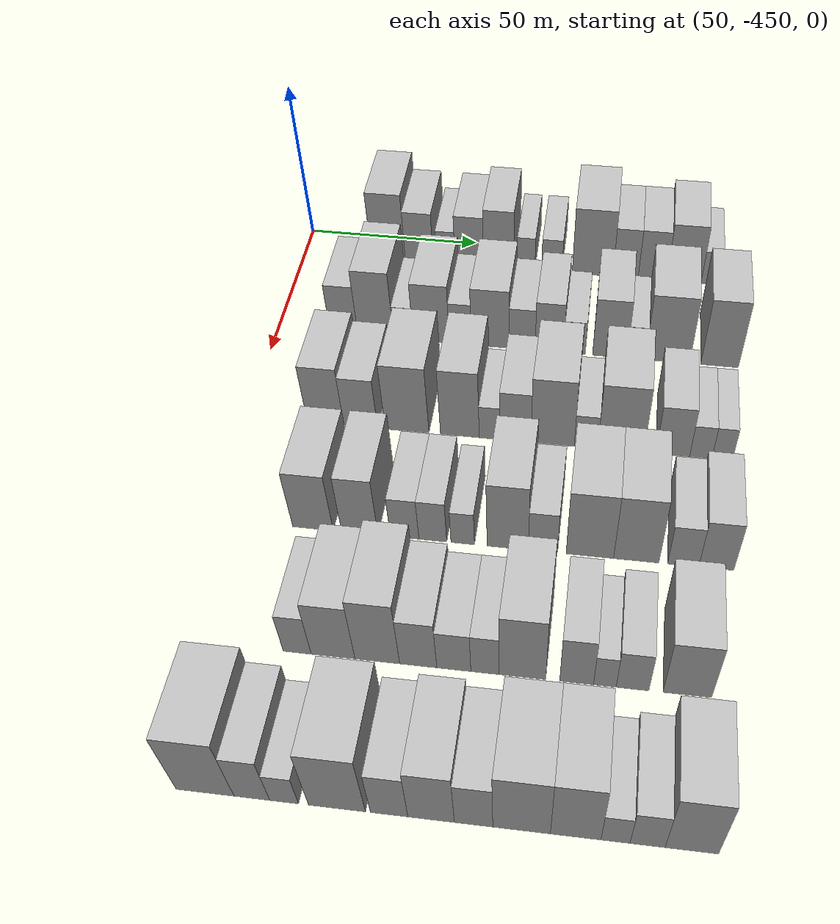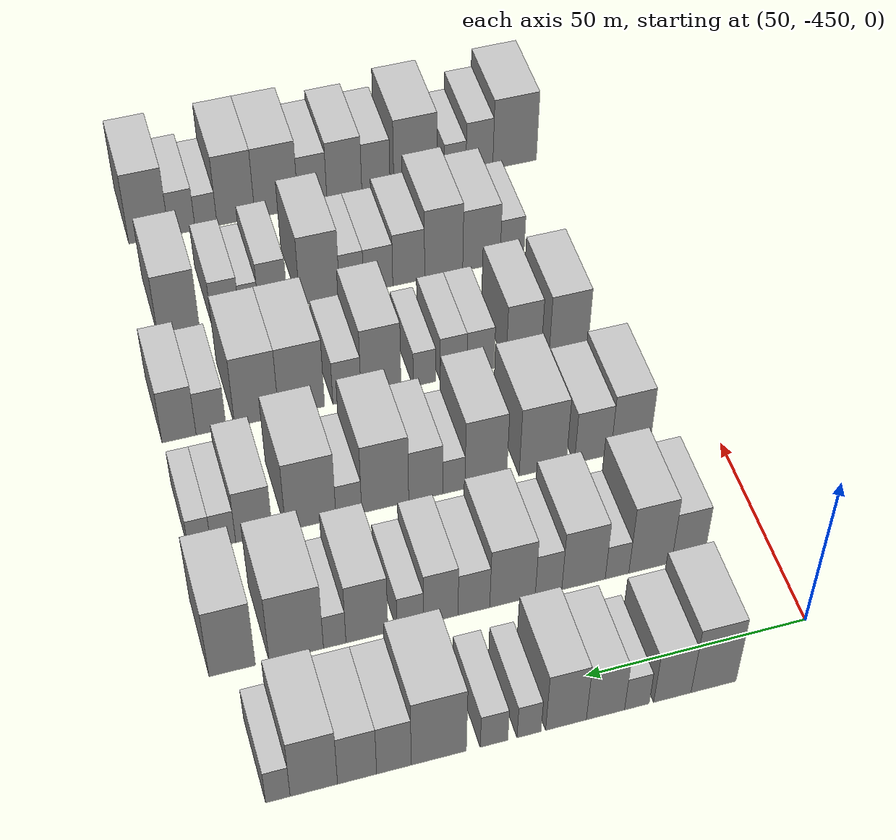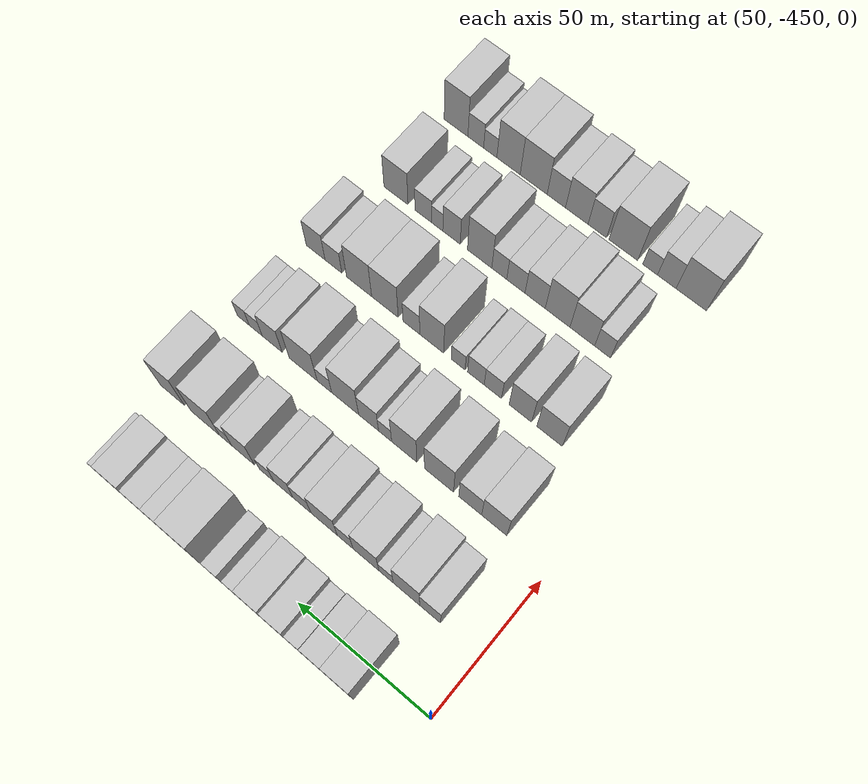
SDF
<sdf version="1.6">
 <world name="default">
  <model name="building_13">
   <static>1</static>
   <pose>50.0000 -424.8476 0 0.000000 0.000000 0.000000</pose>
   <link name="link">
    <pose>0 0 12.00 0 0 0</pose>
    <collision name="collision"><geometry><box><size>20.0000 10.1417 24.0000</size></box></geometry></collision>
    <visual name="visual">
     <cast_shadows>0</cast_shadows>
     <geometry><box><size>20.0000 10.1417 24.0000</size></box></geometry>
     <material>
      <script>
       <uri>model://HANNAS_wall/materials/scripts</uri>
       <uri>model://HANNAS_wall/materials/textures</uri>
       <name>vrc/HANNAS_wall</name>
      </script>
     </material>
    </visual>
   </link>
  </model>
  <model name="building_14">
   <static>1</static>
   <pose>50.0000 -415.6041 0 0.000000 0.000000 0.000000</pose>
   <link name="link">
    <pose>0 0 9.00 0 0 0</pose>
    <collision name="collision"><geometry><box><size>20.0000 8.3454 18.0000</size></box></geometry></collision>
    <visual name="visual">
     <cast_shadows>0</cast_shadows>
     <geometry><box><size>20.0000 8.3454 18.0000</size></box></geometry>
     <material>
      <script>
       <uri>model://HANNAS_wall/materials/scripts</uri>
       <uri>model://HANNAS_wall/materials/textures</uri>
       <name>vrc/HANNAS_wall</name>
      </script>
     </material>
    </visual>
   </link>
  </model>
  <model name="building_15">
   <static>1</static>
   <pose>50.0000 -407.6908 0 0.000000 0.000000 0.000000</pose>
   <link name="link">
    <pose>0 0 6.00 0 0 0</pose>
    <collision name="collision"><geometry><box><size>20.0000 5.4811 12.0000</size></box></geometry></collision>
    <visual name="visual">
     <cast_shadows>0</cast_shadows>
     <geometry><box><size>20.0000 5.4811 12.0000</size></box></geometry>
     <material>
      <script>
       <uri>model://HANNAS_wall/materials/scripts</uri>
       <uri>model://HANNAS_wall/materials/textures</uri>
       <name>vrc/HANNAS_wall</name>
      </script>
     </material>
    </visual>
   </link>
  </model>
  <model name="building_16">
   <static>1</static>
   <pose>50.0000 -400.7365 0 0.000000 0.000000 0.000000</pose>
   <link name="link">
    <pose>0 0 9.00 0 0 0</pose>
    <collision name="collision"><geometry><box><size>20.0000 8.4275 18.0000</size></box></geometry></collision>
    <visual name="visual">
     <cast_shadows>0</cast_shadows>
     <geometry><box><size>20.0000 8.4275 18.0000</size></box></geometry>
     <material>
      <script>
       <uri>model://HANNAS_wall/materials/scripts</uri>
       <uri>model://HANNAS_wall/materials/textures</uri>
       <name>vrc/HANNAS_wall</name>
      </script>
     </material>
    </visual>
   </link>
  </model>
  <model name="building_17">
   <static>1</static>
   <pose>50.0000 -392.0549 0 0.000000 0.000000 0.000000</pose>
   <link name="link">
    <pose>0 0 10.50 0 0 0</pose>
    <collision name="collision"><geometry><box><size>20.0000 8.9357 21.0000</size></box></geometry></collision>
    <visual name="visual">
     <cast_shadows>0</cast_shadows>
     <geometry><box><size>20.0000 8.9357 21.0000</size></box></geometry>
     <material>
      <script>
       <uri>model://HANNAS_wall/materials/scripts</uri>
       <uri>model://HANNAS_wall/materials/textures</uri>
       <name>vrc/HANNAS_wall</name>
      </script>
     </material>
    </visual>
   </link>
  </model>
  <model name="building_18">
   <static>1</static>
   <pose>50.0000 -383.9698 0 0.000000 0.000000 0.000000</pose>
   <link name="link">
    <pose>0 0 6.00 0 0 0</pose>
    <collision name="collision"><geometry><box><size>20.0000 5.2344 12.0000</size></box></geometry></collision>
    <visual name="visual">
     <cast_shadows>0</cast_shadows>
     <geometry><box><size>20.0000 5.2344 12.0000</size></box></geometry>
     <material>
      <script>
       <uri>model://HANNAS_wall/materials/scripts</uri>
       <uri>model://HANNAS_wall/materials/textures</uri>
       <name>vrc/HANNAS_wall</name>
      </script>
     </material>
    </visual>
   </link>
  </model>
  <model name="building_19">
   <static>1</static>
   <pose>50.0000 -376.3699 0 0.000000 0.000000 0.000000</pose>
   <link name="link">
    <pose>0 0 6.00 0 0 0</pose>
    <collision name="collision"><geometry><box><size>20.0000 5.9654 12.0000</size></box></geometry></collision>
    <visual name="visual">
     <cast_shadows>0</cast_shadows>
     <geometry><box><size>20.0000 5.9654 12.0000</size></box></geometry>
     <material>
      <script>
       <uri>model://HANNAS_wall/materials/scripts</uri>
       <uri>model://HANNAS_wall/materials/textures</uri>
       <name>vrc/HANNAS_wall</name>
      </script>
     </material>
    </visual>
   </link>
  </model>
  <model name="building_20">
   <static>1</static>
   <pose>50.0000 -364.4836 0 0.000000 0.000000 0.000000</pose>
   <link name="link">
    <pose>0 0 12.00 0 0 0</pose>
    <collision name="collision"><geometry><box><size>20.0000 11.8072 24.0000</size></box></geometry></collision>
    <visual name="visual">
     <cast_shadows>0</cast_shadows>
     <geometry><box><size>20.0000 11.8072 24.0000</size></box></geometry>
     <material>
      <script>
       <uri>model://HANNAS_wall/materials/scripts</uri>
       <uri>model://HANNAS_wall/materials/textures</uri>
       <name>vrc/HANNAS_wall</name>
      </script>
     </material>
    </visual>
   </link>
  </model>
  <model name="building_21">
   <static>1</static>
   <pose>50.0000 -354.9082 0 0.000000 0.000000 0.000000</pose>
   <link name="link">
    <pose>0 0 9.00 0 0 0</pose>
    <collision name="collision"><geometry><box><size>20.0000 7.3438 18.0000</size></box></geometry></collision>
    <visual name="visual">
     <cast_shadows>0</cast_shadows>
     <geometry><box><size>20.0000 7.3438 18.0000</size></box></geometry>
     <material>
      <script>
       <uri>model://HANNAS_wall/materials/scripts</uri>
       <uri>model://HANNAS_wall/materials/textures</uri>
       <name>vrc/HANNAS_wall</name>
      </script>
     </material>
    </visual>
   </link>
  </model>
  <model name="building_22">
   <static>1</static>
   <pose>50.0000 -347.1120 0 0.000000 0.000000 0.000000</pose>
   <link name="link">
    <pose>0 0 9.00 0 0 0</pose>
    <collision name="collision"><geometry><box><size>20.0000 8.2485 18.0000</size></box></geometry></collision>
    <visual name="visual">
     <cast_shadows>0</cast_shadows>
     <geometry><box><size>20.0000 8.2485 18.0000</size></box></geometry>
     <material>
      <script>
       <uri>model://HANNAS_wall/materials/scripts</uri>
       <uri>model://HANNAS_wall/materials/textures</uri>
       <name>vrc/HANNAS_wall</name>
      </script>
     </material>
    </visual>
   </link>
  </model>
  <model name="building_23">
   <static>1</static>
   <pose>50.0000 -338.0205 0 0.000000 0.000000 0.000000</pose>
   <link name="link">
    <pose>0 0 10.50 0 0 0</pose>
    <collision name="collision"><geometry><box><size>20.0000 9.9346 21.0000</size></box></geometry></collision>
    <visual name="visual">
     <cast_shadows>0</cast_shadows>
     <geometry><box><size>20.0000 9.9346 21.0000</size></box></geometry>
     <material>
      <script>
       <uri>model://HANNAS_wall/materials/scripts</uri>
       <uri>model://HANNAS_wall/materials/textures</uri>
       <name>vrc/HANNAS_wall</name>
      </script>
     </material>
    </visual>
   </link>
  </model>
  <model name="building_24">
   <static>1</static>
   <pose>50.0000 -330.4916 0 0.000000 0.000000 0.000000</pose>
   <link name="link">
    <pose>0 0 6.00 0 0 0</pose>
    <collision name="collision"><geometry><box><size>20.0000 5.1233 12.0000</size></box></geometry></collision>
    <visual name="visual">
     <cast_shadows>0</cast_shadows>
     <geometry><box><size>20.0000 5.1233 12.0000</size></box></geometry>
     <material>
      <script>
       <uri>model://HANNAS_wall/materials/scripts</uri>
       <uri>model://HANNAS_wall/materials/textures</uri>
       <name>vrc/HANNAS_wall</name>
      </script>
     </material>
    </visual>
   </link>
  </model>
  <model name="building_122">
   <static>1</static>
   <pose>82.0000 -431.2637 0 0.000000 0.000000 0.000000</pose>
   <link name="link">
    <pose>0 0 9.00 0 0 0</pose>
    <collision name="collision"><geometry><box><size>20.0000 7.8121 18.0000</size></box></geometry></collision>
    <visual name="visual">
     <cast_shadows>0</cast_shadows>
     <geometry><box><size>20.0000 7.8121 18.0000</size></box></geometry>
     <material>
      <script>
       <uri>model://HANNAS_wall/materials/scripts</uri>
       <uri>model://HANNAS_wall/materials/textures</uri>
       <name>vrc/HANNAS_wall</name>
      </script>
     </material>
    </visual>
   </link>
  </model>
  <model name="building_123">
   <static>1</static>
   <pose>82.0000 -422.3498 0 0.000000 0.000000 0.000000</pose>
   <link name="link">
    <pose>0 0 12.00 0 0 0</pose>
    <collision name="collision"><geometry><box><size>20.0000 10.0157 24.0000</size></box></geometry></collision>
    <visual name="visual">
     <cast_shadows>0</cast_shadows>
     <geometry><box><size>20.0000 10.0157 24.0000</size></box></geometry>
     <material>
      <script>
       <uri>model://HANNAS_wall/materials/scripts</uri>
       <uri>model://HANNAS_wall/materials/textures</uri>
       <name>vrc/HANNAS_wall</name>
      </script>
     </material>
    </visual>
   </link>
  </model>
  <model name="building_124">
   <static>1</static>
   <pose>82.0000 -414.5962 0 0.000000 0.000000 0.000000</pose>
   <link name="link">
    <pose>0 0 6.00 0 0 0</pose>
    <collision name="collision"><geometry><box><size>20.0000 5.4915 12.0000</size></box></geometry></collision>
    <visual name="visual">
     <cast_shadows>0</cast_shadows>
     <geometry><box><size>20.0000 5.4915 12.0000</size></box></geometry>
     <material>
      <script>
       <uri>model://HANNAS_wall/materials/scripts</uri>
       <uri>model://HANNAS_wall/materials/textures</uri>
       <name>vrc/HANNAS_wall</name>
      </script>
     </material>
    </visual>
   </link>
  </model>
  <model name="building_125">
   <static>1</static>
   <pose>82.0000 -406.8385 0 0.000000 0.000000 0.000000</pose>
   <link name="link">
    <pose>0 0 10.50 0 0 0</pose>
    <collision name="collision"><geometry><box><size>20.0000 10.0240 21.0000</size></box></geometry></collision>
    <visual name="visual">
     <cast_shadows>0</cast_shadows>
     <geometry><box><size>20.0000 10.0240 21.0000</size></box></geometry>
     <material>
      <script>
       <uri>model://HANNAS_wall/materials/scripts</uri>
       <uri>model://HANNAS_wall/materials/textures</uri>
       <name>vrc/HANNAS_wall</name>
      </script>
     </material>
    </visual>
   </link>
  </model>
  <model name="building_126">
   <static>1</static>
   <pose>82.0000 -398.7734 0 0.000000 0.000000 0.000000</pose>
   <link name="link">
    <pose>0 0 7.50 0 0 0</pose>
    <collision name="collision"><geometry><box><size>20.0000 6.1062 15.0000</size></box></geometry></collision>
    <visual name="visual">
     <cast_shadows>0</cast_shadows>
     <geometry><box><size>20.0000 6.1062 15.0000</size></box></geometry>
     <material>
      <script>
       <uri>model://HANNAS_wall/materials/scripts</uri>
       <uri>model://HANNAS_wall/materials/textures</uri>
       <name>vrc/HANNAS_wall</name>
      </script>
     </material>
    </visual>
   </link>
  </model>
  <model name="building_127">
   <static>1</static>
   <pose>82.0000 -390.5238 0 0.000000 0.000000 0.000000</pose>
   <link name="link">
    <pose>0 0 10.50 0 0 0</pose>
    <collision name="collision"><geometry><box><size>20.0000 10.3931 21.0000</size></box></geometry></collision>
    <visual name="visual">
     <cast_shadows>0</cast_shadows>
     <geometry><box><size>20.0000 10.3931 21.0000</size></box></geometry>
     <material>
      <script>
       <uri>model://HANNAS_wall/materials/scripts</uri>
       <uri>model://HANNAS_wall/materials/textures</uri>
       <name>vrc/HANNAS_wall</name>
      </script>
     </material>
    </visual>
   </link>
  </model>
  <model name="building_128">
   <static>1</static>
   <pose>82.0000 -381.7339 0 0.000000 0.000000 0.000000</pose>
   <link name="link">
    <pose>0 0 7.50 0 0 0</pose>
    <collision name="collision"><geometry><box><size>20.0000 7.1867 15.0000</size></box></geometry></collision>
    <visual name="visual">
     <cast_shadows>0</cast_shadows>
     <geometry><box><size>20.0000 7.1867 15.0000</size></box></geometry>
     <material>
      <script>
       <uri>model://HANNAS_wall/materials/scripts</uri>
       <uri>model://HANNAS_wall/materials/textures</uri>
       <name>vrc/HANNAS_wall</name>
      </script>
     </material>
    </visual>
   </link>
  </model>
  <model name="building_129">
   <static>1</static>
   <pose>82.0000 -374.2468 0 0.000000 0.000000 0.000000</pose>
   <link name="link">
    <pose>0 0 9.00 0 0 0</pose>
    <collision name="collision"><geometry><box><size>20.0000 7.7875 18.0000</size></box></geometry></collision>
    <visual name="visual">
     <cast_shadows>0</cast_shadows>
     <geometry><box><size>20.0000 7.7875 18.0000</size></box></geometry>
     <material>
      <script>
       <uri>model://HANNAS_wall/materials/scripts</uri>
       <uri>model://HANNAS_wall/materials/textures</uri>
       <name>vrc/HANNAS_wall</name>
      </script>
     </material>
    </visual>
   </link>
  </model>
  <model name="building_130">
   <static>1</static>
   <pose>82.0000 -367.3965 0 0.000000 0.000000 0.000000</pose>
   <link name="link">
    <pose>0 0 6.00 0 0 0</pose>
    <collision name="collision"><geometry><box><size>20.0000 5.9131 12.0000</size></box></geometry></collision>
    <visual name="visual">
     <cast_shadows>0</cast_shadows>
     <geometry><box><size>20.0000 5.9131 12.0000</size></box></geometry>
     <material>
      <script>
       <uri>model://HANNAS_wall/materials/scripts</uri>
       <uri>model://HANNAS_wall/materials/textures</uri>
       <name>vrc/HANNAS_wall</name>
      </script>
     </material>
    </visual>
   </link>
  </model>
  <model name="building_131">
   <static>1</static>
   <pose>82.0000 -357.7746 0 0.000000 0.000000 0.000000</pose>
   <link name="link">
    <pose>0 0 10.50 0 0 0</pose>
    <collision name="collision"><geometry><box><size>20.0000 9.3309 21.0000</size></box></geometry></collision>
    <visual name="visual">
     <cast_shadows>0</cast_shadows>
     <geometry><box><size>20.0000 9.3309 21.0000</size></box></geometry>
     <material>
      <script>
       <uri>model://HANNAS_wall/materials/scripts</uri>
       <uri>model://HANNAS_wall/materials/textures</uri>
       <name>vrc/HANNAS_wall</name>
      </script>
     </material>
    </visual>
   </link>
  </model>
  <model name="building_132">
   <static>1</static>
   <pose>82.0000 -350.6234 0 0.000000 0.000000 0.000000</pose>
   <link name="link">
    <pose>0 0 6.00 0 0 0</pose>
    <collision name="collision"><geometry><box><size>20.0000 4.9716 12.0000</size></box></geometry></collision>
    <visual name="visual">
     <cast_shadows>0</cast_shadows>
     <geometry><box><size>20.0000 4.9716 12.0000</size></box></geometry>
     <material>
      <script>
       <uri>model://HANNAS_wall/materials/scripts</uri>
       <uri>model://HANNAS_wall/materials/textures</uri>
       <name>vrc/HANNAS_wall</name>
      </script>
     </material>
    </visual>
   </link>
  </model>
  <model name="building_133">
   <static>1</static>
   <pose>82.0000 -342.1812 0 0.000000 0.000000 0.000000</pose>
   <link name="link">
    <pose>0 0 12.00 0 0 0</pose>
    <collision name="collision"><geometry><box><size>20.0000 11.9127 24.0000</size></box></geometry></collision>
    <visual name="visual">
     <cast_shadows>0</cast_shadows>
     <geometry><box><size>20.0000 11.9127 24.0000</size></box></geometry>
     <material>
      <script>
       <uri>model://HANNAS_wall/materials/scripts</uri>
       <uri>model://HANNAS_wall/materials/textures</uri>
       <name>vrc/HANNAS_wall</name>
      </script>
     </material>
    </visual>
   </link>
  </model>
  <model name="building_134">
   <static>1</static>
   <pose>82.0000 -328.1882 0 0.000000 0.000000 0.000000</pose>
   <link name="link">
    <pose>0 0 12.00 0 0 0</pose>
    <collision name="collision"><geometry><box><size>20.0000 10.0733 24.0000</size></box></geometry></collision>
    <visual name="visual">
     <cast_shadows>0</cast_shadows>
     <geometry><box><size>20.0000 10.0733 24.0000</size></box></geometry>
     <material>
      <script>
       <uri>model://HANNAS_wall/materials/scripts</uri>
       <uri>model://HANNAS_wall/materials/textures</uri>
       <name>vrc/HANNAS_wall</name>
      </script>
     </material>
    </visual>
   </link>
  </model>
  <model name="building_240">
   <static>1</static>
   <pose>114.0000 -429.1707 0 0.000000 0.000000 0.000000</pose>
   <link name="link">
    <pose>0 0 10.50 0 0 0</pose>
    <collision name="collision"><geometry><box><size>20.0000 9.5785 21.0000</size></box></geometry></collision>
    <visual name="visual">
     <cast_shadows>0</cast_shadows>
     <geometry><box><size>20.0000 9.5785 21.0000</size></box></geometry>
     <material>
      <script>
       <uri>model://HANNAS_wall/materials/scripts</uri>
       <uri>model://HANNAS_wall/materials/textures</uri>
       <name>vrc/HANNAS_wall</name>
      </script>
     </material>
    </visual>
   </link>
  </model>
  <model name="building_241">
   <static>1</static>
   <pose>114.0000 -419.9825 0 0.000000 0.000000 0.000000</pose>
   <link name="link">
    <pose>0 0 9.00 0 0 0</pose>
    <collision name="collision"><geometry><box><size>20.0000 8.7980 18.0000</size></box></geometry></collision>
    <visual name="visual">
     <cast_shadows>0</cast_shadows>
     <geometry><box><size>20.0000 8.7980 18.0000</size></box></geometry>
     <material>
      <script>
       <uri>model://HANNAS_wall/materials/scripts</uri>
       <uri>model://HANNAS_wall/materials/textures</uri>
       <name>vrc/HANNAS_wall</name>
      </script>
     </material>
    </visual>
   </link>
  </model>
  <model name="building_242">
   <static>1</static>
   <pose>114.0000 -407.9237 0 0.000000 0.000000 0.000000</pose>
   <link name="link">
    <pose>0 0 12.00 0 0 0</pose>
    <collision name="collision"><geometry><box><size>20.0000 11.3197 24.0000</size></box></geometry></collision>
    <visual name="visual">
     <cast_shadows>0</cast_shadows>
     <geometry><box><size>20.0000 11.3197 24.0000</size></box></geometry>
     <material>
      <script>
       <uri>model://HANNAS_wall/materials/scripts</uri>
       <uri>model://HANNAS_wall/materials/textures</uri>
       <name>vrc/HANNAS_wall</name>
      </script>
     </material>
    </visual>
   </link>
  </model>
  <model name="building_243">
   <static>1</static>
   <pose>114.0000 -394.2910 0 0.000000 0.000000 0.000000</pose>
   <link name="link">
    <pose>0 0 12.00 0 0 0</pose>
    <collision name="collision"><geometry><box><size>20.0000 9.9457 24.0000</size></box></geometry></collision>
    <visual name="visual">
     <cast_shadows>0</cast_shadows>
     <geometry><box><size>20.0000 9.9457 24.0000</size></box></geometry>
     <material>
      <script>
       <uri>model://HANNAS_wall/materials/scripts</uri>
       <uri>model://HANNAS_wall/materials/textures</uri>
       <name>vrc/HANNAS_wall</name>
      </script>
     </material>
    </visual>
   </link>
  </model>
  <model name="building_244">
   <static>1</static>
   <pose>114.0000 -386.7099 0 0.000000 0.000000 0.000000</pose>
   <link name="link">
    <pose>0 0 6.00 0 0 0</pose>
    <collision name="collision"><geometry><box><size>20.0000 5.2166 12.0000</size></box></geometry></collision>
    <visual name="visual">
     <cast_shadows>0</cast_shadows>
     <geometry><box><size>20.0000 5.2166 12.0000</size></box></geometry>
     <material>
      <script>
       <uri>model://HANNAS_wall/materials/scripts</uri>
       <uri>model://HANNAS_wall/materials/textures</uri>
       <name>vrc/HANNAS_wall</name>
      </script>
     </material>
    </visual>
   </link>
  </model>
  <model name="building_245">
   <static>1</static>
   <pose>114.0000 -380.0978 0 0.000000 0.000000 0.000000</pose>
   <link name="link">
    <pose>0 0 9.00 0 0 0</pose>
    <collision name="collision"><geometry><box><size>20.0000 8.0076 18.0000</size></box></geometry></collision>
    <visual name="visual">
     <cast_shadows>0</cast_shadows>
     <geometry><box><size>20.0000 8.0076 18.0000</size></box></geometry>
     <material>
      <script>
       <uri>model://HANNAS_wall/materials/scripts</uri>
       <uri>model://HANNAS_wall/materials/textures</uri>
       <name>vrc/HANNAS_wall</name>
      </script>
     </material>
    </visual>
   </link>
  </model>
  <model name="building_246">
   <static>1</static>
   <pose>114.0000 -370.6038 0 0.000000 0.000000 0.000000</pose>
   <link name="link">
    <pose>0 0 12.00 0 0 0</pose>
    <collision name="collision"><geometry><box><size>20.0000 10.9803 24.0000</size></box></geometry></collision>
    <visual name="visual">
     <cast_shadows>0</cast_shadows>
     <geometry><box><size>20.0000 10.9803 24.0000</size></box></geometry>
     <material>
      <script>
       <uri>model://HANNAS_wall/materials/scripts</uri>
       <uri>model://HANNAS_wall/materials/textures</uri>
       <name>vrc/HANNAS_wall</name>
      </script>
     </material>
    </visual>
   </link>
  </model>
  <model name="building_247">
   <static>1</static>
   <pose>114.0000 -362.1344 0 0.000000 0.000000 0.000000</pose>
   <link name="link">
    <pose>0 0 6.00 0 0 0</pose>
    <collision name="collision"><geometry><box><size>20.0000 5.9584 12.0000</size></box></geometry></collision>
    <visual name="visual">
     <cast_shadows>0</cast_shadows>
     <geometry><box><size>20.0000 5.9584 12.0000</size></box></geometry>
     <material>
      <script>
       <uri>model://HANNAS_wall/materials/scripts</uri>
       <uri>model://HANNAS_wall/materials/textures</uri>
       <name>vrc/HANNAS_wall</name>
      </script>
     </material>
    </visual>
   </link>
  </model>
  <model name="building_248">
   <static>1</static>
   <pose>114.0000 -353.3468 0 0.000000 0.000000 0.000000</pose>
   <link name="link">
    <pose>0 0 12.00 0 0 0</pose>
    <collision name="collision"><geometry><box><size>20.0000 11.6170 24.0000</size></box></geometry></collision>
    <visual name="visual">
     <cast_shadows>0</cast_shadows>
     <geometry><box><size>20.0000 11.6170 24.0000</size></box></geometry>
     <material>
      <script>
       <uri>model://HANNAS_wall/materials/scripts</uri>
       <uri>model://HANNAS_wall/materials/textures</uri>
       <name>vrc/HANNAS_wall</name>
      </script>
     </material>
    </visual>
   </link>
  </model>
  <model name="building_249">
   <static>1</static>
   <pose>114.0000 -340.3384 0 0.000000 0.000000 0.000000</pose>
   <link name="link">
    <pose>0 0 9.00 0 0 0</pose>
    <collision name="collision"><geometry><box><size>20.0000 8.3997 18.0000</size></box></geometry></collision>
    <visual name="visual">
     <cast_shadows>0</cast_shadows>
     <geometry><box><size>20.0000 8.3997 18.0000</size></box></geometry>
     <material>
      <script>
       <uri>model://HANNAS_wall/materials/scripts</uri>
       <uri>model://HANNAS_wall/materials/textures</uri>
       <name>vrc/HANNAS_wall</name>
      </script>
     </material>
    </visual>
   </link>
  </model>
  <model name="building_250">
   <static>1</static>
   <pose>114.0000 -333.3641 0 0.000000 0.000000 0.000000</pose>
   <link name="link">
    <pose>0 0 6.00 0 0 0</pose>
    <collision name="collision"><geometry><box><size>20.0000 5.5490 12.0000</size></box></geometry></collision>
    <visual name="visual">
     <cast_shadows>0</cast_shadows>
     <geometry><box><size>20.0000 5.5490 12.0000</size></box></geometry>
     <material>
      <script>
       <uri>model://HANNAS_wall/materials/scripts</uri>
       <uri>model://HANNAS_wall/materials/textures</uri>
       <name>vrc/HANNAS_wall</name>
      </script>
     </material>
    </visual>
   </link>
  </model>
  <model name="building_251">
   <static>1</static>
   <pose>114.0000 -328.0484 0 0.000000 0.000000 0.000000</pose>
   <link name="link">
    <pose>0 0 6.00 0 0 0</pose>
    <collision name="collision"><geometry><box><size>20.0000 5.0824 12.0000</size></box></geometry></collision>
    <visual name="visual">
     <cast_shadows>0</cast_shadows>
     <geometry><box><size>20.0000 5.0824 12.0000</size></box></geometry>
     <material>
      <script>
       <uri>model://HANNAS_wall/materials/scripts</uri>
       <uri>model://HANNAS_wall/materials/textures</uri>
       <name>vrc/HANNAS_wall</name>
      </script>
     </material>
    </visual>
   </link>
  </model>
  <model name="building_362">
   <static>1</static>
   <pose>146.0000 -424.9022 0 0.000000 0.000000 0.000000</pose>
   <link name="link">
    <pose>0 0 10.50 0 0 0</pose>
    <collision name="collision"><geometry><box><size>20.0000 9.8249 21.0000</size></box></geometry></collision>
    <visual name="visual">
     <cast_shadows>0</cast_shadows>
     <geometry><box><size>20.0000 9.8249 21.0000</size></box></geometry>
     <material>
      <script>
       <uri>model://HANNAS_wall/materials/scripts</uri>
       <uri>model://HANNAS_wall/materials/textures</uri>
       <name>vrc/HANNAS_wall</name>
      </script>
     </material>
    </visual>
   </link>
  </model>
  <model name="building_363">
   <static>1</static>
   <pose>146.0000 -413.6037 0 0.000000 0.000000 0.000000</pose>
   <link name="link">
    <pose>0 0 10.50 0 0 0</pose>
    <collision name="collision"><geometry><box><size>20.0000 8.7722 21.0000</size></box></geometry></collision>
    <visual name="visual">
     <cast_shadows>0</cast_shadows>
     <geometry><box><size>20.0000 8.7722 21.0000</size></box></geometry>
     <material>
      <script>
       <uri>model://HANNAS_wall/materials/scripts</uri>
       <uri>model://HANNAS_wall/materials/textures</uri>
       <name>vrc/HANNAS_wall</name>
      </script>
     </material>
    </visual>
   </link>
  </model>
  <model name="building_364">
   <static>1</static>
   <pose>146.0000 -402.8159 0 0.000000 0.000000 0.000000</pose>
   <link name="link">
    <pose>0 0 7.50 0 0 0</pose>
    <collision name="collision"><geometry><box><size>20.0000 6.8034 15.0000</size></box></geometry></collision>
    <visual name="visual">
     <cast_shadows>0</cast_shadows>
     <geometry><box><size>20.0000 6.8034 15.0000</size></box></geometry>
     <material>
      <script>
       <uri>model://HANNAS_wall/materials/scripts</uri>
       <uri>model://HANNAS_wall/materials/textures</uri>
       <name>vrc/HANNAS_wall</name>
      </script>
     </material>
    </visual>
   </link>
  </model>
  <model name="building_365">
   <static>1</static>
   <pose>146.0000 -396.1015 0 0.000000 0.000000 0.000000</pose>
   <link name="link">
    <pose>0 0 7.50 0 0 0</pose>
    <collision name="collision"><geometry><box><size>20.0000 6.6254 15.0000</size></box></geometry></collision>
    <visual name="visual">
     <cast_shadows>0</cast_shadows>
     <geometry><box><size>20.0000 6.6254 15.0000</size></box></geometry>
     <material>
      <script>
       <uri>model://HANNAS_wall/materials/scripts</uri>
       <uri>model://HANNAS_wall/materials/textures</uri>
       <name>vrc/HANNAS_wall</name>
      </script>
     </material>
    </visual>
   </link>
  </model>
  <model name="building_366">
   <static>1</static>
   <pose>146.0000 -389.0002 0 0.000000 0.000000 0.000000</pose>
   <link name="link">
    <pose>0 0 6.00 0 0 0</pose>
    <collision name="collision"><geometry><box><size>20.0000 5.5773 12.0000</size></box></geometry></collision>
    <visual name="visual">
     <cast_shadows>0</cast_shadows>
     <geometry><box><size>20.0000 5.5773 12.0000</size></box></geometry>
     <material>
      <script>
       <uri>model://HANNAS_wall/materials/scripts</uri>
       <uri>model://HANNAS_wall/materials/textures</uri>
       <name>vrc/HANNAS_wall</name>
      </script>
     </material>
    </visual>
   </link>
  </model>
  <model name="building_367">
   <static>1</static>
   <pose>146.0000 -378.3548 0 0.000000 0.000000 0.000000</pose>
   <link name="link">
    <pose>0 0 12.00 0 0 0</pose>
    <collision name="collision"><geometry><box><size>20.0000 9.7135 24.0000</size></box></geometry></collision>
    <visual name="visual">
     <cast_shadows>0</cast_shadows>
     <geometry><box><size>20.0000 9.7135 24.0000</size></box></geometry>
     <material>
      <script>
       <uri>model://HANNAS_wall/materials/scripts</uri>
       <uri>model://HANNAS_wall/materials/textures</uri>
       <name>vrc/HANNAS_wall</name>
      </script>
     </material>
    </visual>
   </link>
  </model>
  <model name="building_368">
   <static>1</static>
   <pose>146.0000 -370.0652 0 0.000000 0.000000 0.000000</pose>
   <link name="link">
    <pose>0 0 7.50 0 0 0</pose>
    <collision name="collision"><geometry><box><size>20.0000 6.8656 15.0000</size></box></geometry></collision>
    <visual name="visual">
     <cast_shadows>0</cast_shadows>
     <geometry><box><size>20.0000 6.8656 15.0000</size></box></geometry>
     <material>
      <script>
       <uri>model://HANNAS_wall/materials/scripts</uri>
       <uri>model://HANNAS_wall/materials/textures</uri>
       <name>vrc/HANNAS_wall</name>
      </script>
     </material>
    </visual>
   </link>
  </model>
  <model name="building_369">
   <static>1</static>
   <pose>146.0000 -359.1123 0 0.000000 0.000000 0.000000</pose>
   <link name="link">
    <pose>0 0 12.00 0 0 0</pose>
    <collision name="collision"><geometry><box><size>20.0000 11.0402 24.0000</size></box></geometry></collision>
    <visual name="visual">
     <cast_shadows>0</cast_shadows>
     <geometry><box><size>20.0000 11.0402 24.0000</size></box></geometry>
     <material>
      <script>
       <uri>model://HANNAS_wall/materials/scripts</uri>
       <uri>model://HANNAS_wall/materials/textures</uri>
       <name>vrc/HANNAS_wall</name>
      </script>
     </material>
    </visual>
   </link>
  </model>
  <model name="building_370">
   <static>1</static>
   <pose>146.0000 -348.3278 0 0.000000 0.000000 0.000000</pose>
   <link name="link">
    <pose>0 0 12.00 0 0 0</pose>
    <collision name="collision"><geometry><box><size>20.0000 10.5288 24.0000</size></box></geometry></collision>
    <visual name="visual">
     <cast_shadows>0</cast_shadows>
     <geometry><box><size>20.0000 10.5288 24.0000</size></box></geometry>
     <material>
      <script>
       <uri>model://HANNAS_wall/materials/scripts</uri>
       <uri>model://HANNAS_wall/materials/textures</uri>
       <name>vrc/HANNAS_wall</name>
      </script>
     </material>
    </visual>
   </link>
  </model>
  <model name="building_371">
   <static>1</static>
   <pose>146.0000 -337.4940 0 0.000000 0.000000 0.000000</pose>
   <link name="link">
    <pose>0 0 7.50 0 0 0</pose>
    <collision name="collision"><geometry><box><size>20.0000 7.1388 15.0000</size></box></geometry></collision>
    <visual name="visual">
     <cast_shadows>0</cast_shadows>
     <geometry><box><size>20.0000 7.1388 15.0000</size></box></geometry>
     <material>
      <script>
       <uri>model://HANNAS_wall/materials/scripts</uri>
       <uri>model://HANNAS_wall/materials/textures</uri>
       <name>vrc/HANNAS_wall</name>
      </script>
     </material>
    </visual>
   </link>
  </model>
  <model name="building_372">
   <static>1</static>
   <pose>146.0000 -329.8999 0 0.000000 0.000000 0.000000</pose>
   <link name="link">
    <pose>0 0 9.00 0 0 0</pose>
    <collision name="collision"><geometry><box><size>20.0000 8.0495 18.0000</size></box></geometry></collision>
    <visual name="visual">
     <cast_shadows>0</cast_shadows>
     <geometry><box><size>20.0000 8.0495 18.0000</size></box></geometry>
     <material>
      <script>
       <uri>model://HANNAS_wall/materials/scripts</uri>
       <uri>model://HANNAS_wall/materials/textures</uri>
       <name>vrc/HANNAS_wall</name>
      </script>
     </material>
    </visual>
   </link>
  </model>
  <model name="building_479">
   <static>1</static>
   <pose>178.0000 -420.8276 0 0.000000 0.000000 0.000000</pose>
   <link name="link">
    <pose>0 0 7.50 0 0 0</pose>
    <collision name="collision"><geometry><box><size>20.0000 6.2062 15.0000</size></box></geometry></collision>
    <visual name="visual">
     <cast_shadows>0</cast_shadows>
     <geometry><box><size>20.0000 6.2062 15.0000</size></box></geometry>
     <material>
      <script>
       <uri>model://HANNAS_wall/materials/scripts</uri>
       <uri>model://HANNAS_wall/materials/textures</uri>
       <name>vrc/HANNAS_wall</name>
      </script>
     </material>
    </visual>
   </link>
  </model>
  <model name="building_480">
   <static>1</static>
   <pose>178.0000 -412.8758 0 0.000000 0.000000 0.000000</pose>
   <link name="link">
    <pose>0 0 10.50 0 0 0</pose>
    <collision name="collision"><geometry><box><size>20.0000 9.6974 21.0000</size></box></geometry></collision>
    <visual name="visual">
     <cast_shadows>0</cast_shadows>
     <geometry><box><size>20.0000 9.6974 21.0000</size></box></geometry>
     <material>
      <script>
       <uri>model://HANNAS_wall/materials/scripts</uri>
       <uri>model://HANNAS_wall/materials/textures</uri>
       <name>vrc/HANNAS_wall</name>
      </script>
     </material>
    </visual>
   </link>
  </model>
  <model name="building_481">
   <static>1</static>
   <pose>178.0000 -403.1164 0 0.000000 0.000000 0.000000</pose>
   <link name="link">
    <pose>0 0 12.00 0 0 0</pose>
    <collision name="collision"><geometry><box><size>20.0000 9.8213 24.0000</size></box></geometry></collision>
    <visual name="visual">
     <cast_shadows>0</cast_shadows>
     <geometry><box><size>20.0000 9.8213 24.0000</size></box></geometry>
     <material>
      <script>
       <uri>model://HANNAS_wall/materials/scripts</uri>
       <uri>model://HANNAS_wall/materials/textures</uri>
       <name>vrc/HANNAS_wall</name>
      </script>
     </material>
    </visual>
   </link>
  </model>
  <model name="building_482">
   <static>1</static>
   <pose>178.0000 -394.1378 0 0.000000 0.000000 0.000000</pose>
   <link name="link">
    <pose>0 0 9.00 0 0 0</pose>
    <collision name="collision"><geometry><box><size>20.0000 8.1361 18.0000</size></box></geometry></collision>
    <visual name="visual">
     <cast_shadows>0</cast_shadows>
     <geometry><box><size>20.0000 8.1361 18.0000</size></box></geometry>
     <material>
      <script>
       <uri>model://HANNAS_wall/materials/scripts</uri>
       <uri>model://HANNAS_wall/materials/textures</uri>
       <name>vrc/HANNAS_wall</name>
      </script>
     </material>
    </visual>
   </link>
  </model>
  <model name="building_483">
   <static>1</static>
   <pose>178.0000 -386.3643 0 0.000000 0.000000 0.000000</pose>
   <link name="link">
    <pose>0 0 7.50 0 0 0</pose>
    <collision name="collision"><geometry><box><size>20.0000 7.4108 15.0000</size></box></geometry></collision>
    <visual name="visual">
     <cast_shadows>0</cast_shadows>
     <geometry><box><size>20.0000 7.4108 15.0000</size></box></geometry>
     <material>
      <script>
       <uri>model://HANNAS_wall/materials/scripts</uri>
       <uri>model://HANNAS_wall/materials/textures</uri>
       <name>vrc/HANNAS_wall</name>
      </script>
     </material>
    </visual>
   </link>
  </model>
  <model name="building_484">
   <static>1</static>
   <pose>178.0000 -379.5986 0 0.000000 0.000000 0.000000</pose>
   <link name="link">
    <pose>0 0 7.50 0 0 0</pose>
    <collision name="collision"><geometry><box><size>20.0000 6.1206 15.0000</size></box></geometry></collision>
    <visual name="visual">
     <cast_shadows>0</cast_shadows>
     <geometry><box><size>20.0000 6.1206 15.0000</size></box></geometry>
     <material>
      <script>
       <uri>model://HANNAS_wall/materials/scripts</uri>
       <uri>model://HANNAS_wall/materials/textures</uri>
       <name>vrc/HANNAS_wall</name>
      </script>
     </material>
    </visual>
   </link>
  </model>
  <model name="building_485">
   <static>1</static>
   <pose>178.0000 -371.5202 0 0.000000 0.000000 0.000000</pose>
   <link name="link">
    <pose>0 0 12.00 0 0 0</pose>
    <collision name="collision"><geometry><box><size>20.0000 10.0362 24.0000</size></box></geometry></collision>
    <visual name="visual">
     <cast_shadows>0</cast_shadows>
     <geometry><box><size>20.0000 10.0362 24.0000</size></box></geometry>
     <material>
      <script>
       <uri>model://HANNAS_wall/materials/scripts</uri>
       <uri>model://HANNAS_wall/materials/textures</uri>
       <name>vrc/HANNAS_wall</name>
      </script>
     </material>
    </visual>
   </link>
  </model>
  <model name="building_486">
   <static>1</static>
   <pose>178.0000 -359.8902 0 0.000000 0.000000 0.000000</pose>
   <link name="link">
    <pose>0 0 9.00 0 0 0</pose>
    <collision name="collision"><geometry><box><size>20.0000 7.2239 18.0000</size></box></geometry></collision>
    <visual name="visual">
     <cast_shadows>0</cast_shadows>
     <geometry><box><size>20.0000 7.2239 18.0000</size></box></geometry>
     <material>
      <script>
       <uri>model://HANNAS_wall/materials/scripts</uri>
       <uri>model://HANNAS_wall/materials/textures</uri>
       <name>vrc/HANNAS_wall</name>
      </script>
     </material>
    </visual>
   </link>
  </model>
  <model name="building_487">
   <static>1</static>
   <pose>178.0000 -353.8637 0 0.000000 0.000000 0.000000</pose>
   <link name="link">
    <pose>0 0 6.00 0 0 0</pose>
    <collision name="collision"><geometry><box><size>20.0000 4.8290 12.0000</size></box></geometry></collision>
    <visual name="visual">
     <cast_shadows>0</cast_shadows>
     <geometry><box><size>20.0000 4.8290 12.0000</size></box></geometry>
     <material>
      <script>
       <uri>model://HANNAS_wall/materials/scripts</uri>
       <uri>model://HANNAS_wall/materials/textures</uri>
       <name>vrc/HANNAS_wall</name>
      </script>
     </material>
    </visual>
   </link>
  </model>
  <model name="building_488">
   <static>1</static>
   <pose>178.0000 -347.9760 0 0.000000 0.000000 0.000000</pose>
   <link name="link">
    <pose>0 0 7.50 0 0 0</pose>
    <collision name="collision"><geometry><box><size>20.0000 6.9465 15.0000</size></box></geometry></collision>
    <visual name="visual">
     <cast_shadows>0</cast_shadows>
     <geometry><box><size>20.0000 6.9465 15.0000</size></box></geometry>
     <material>
      <script>
       <uri>model://HANNAS_wall/materials/scripts</uri>
       <uri>model://HANNAS_wall/materials/textures</uri>
       <name>vrc/HANNAS_wall</name>
      </script>
     </material>
    </visual>
   </link>
  </model>
  <model name="building_489">
   <static>1</static>
   <pose>178.0000 -336.3738 0 0.000000 0.000000 0.000000</pose>
   <link name="link">
    <pose>0 0 10.50 0 0 0</pose>
    <collision name="collision"><geometry><box><size>20.0000 10.2578 21.0000</size></box></geometry></collision>
    <visual name="visual">
     <cast_shadows>0</cast_shadows>
     <geometry><box><size>20.0000 10.2578 21.0000</size></box></geometry>
     <material>
      <script>
       <uri>model://HANNAS_wall/materials/scripts</uri>
       <uri>model://HANNAS_wall/materials/textures</uri>
       <name>vrc/HANNAS_wall</name>
      </script>
     </material>
    </visual>
   </link>
  </model>
  <model name="building_600">
   <static>1</static>
   <pose>210.0000 -431.6897 0 0.000000 0.000000 0.000000</pose>
   <link name="link">
    <pose>0 0 12.00 0 0 0</pose>
    <collision name="collision"><geometry><box><size>20.0000 11.8698 24.0000</size></box></geometry></collision>
    <visual name="visual">
     <cast_shadows>0</cast_shadows>
     <geometry><box><size>20.0000 11.8698 24.0000</size></box></geometry>
     <material>
      <script>
       <uri>model://HANNAS_wall/materials/scripts</uri>
       <uri>model://HANNAS_wall/materials/textures</uri>
       <name>vrc/HANNAS_wall</name>
      </script>
     </material>
    </visual>
   </link>
  </model>
  <model name="building_601">
   <static>1</static>
   <pose>210.0000 -422.1272 0 0.000000 0.000000 0.000000</pose>
   <link name="link">
    <pose>0 0 9.00 0 0 0</pose>
    <collision name="collision"><geometry><box><size>20.0000 7.2551 18.0000</size></box></geometry></collision>
    <visual name="visual">
     <cast_shadows>0</cast_shadows>
     <geometry><box><size>20.0000 7.2551 18.0000</size></box></geometry>
     <material>
      <script>
       <uri>model://HANNAS_wall/materials/scripts</uri>
       <uri>model://HANNAS_wall/materials/textures</uri>
       <name>vrc/HANNAS_wall</name>
      </script>
     </material>
    </visual>
   </link>
  </model>
  <model name="building_602">
   <static>1</static>
   <pose>210.0000 -415.5828 0 0.000000 0.000000 0.000000</pose>
   <link name="link">
    <pose>0 0 6.00 0 0 0</pose>
    <collision name="collision"><geometry><box><size>20.0000 5.8337 12.0000</size></box></geometry></collision>
    <visual name="visual">
     <cast_shadows>0</cast_shadows>
     <geometry><box><size>20.0000 5.8337 12.0000</size></box></geometry>
     <material>
      <script>
       <uri>model://HANNAS_wall/materials/scripts</uri>
       <uri>model://HANNAS_wall/materials/textures</uri>
       <name>vrc/HANNAS_wall</name>
      </script>
     </material>
    </visual>
   </link>
  </model>
  <model name="building_603">
   <static>1</static>
   <pose>210.0000 -404.9321 0 0.000000 0.000000 0.000000</pose>
   <link name="link">
    <pose>0 0 12.00 0 0 0</pose>
    <collision name="collision"><geometry><box><size>20.0000 11.4679 24.0000</size></box></geometry></collision>
    <visual name="visual">
     <cast_shadows>0</cast_shadows>
     <geometry><box><size>20.0000 11.4679 24.0000</size></box></geometry>
     <material>
      <script>
       <uri>model://HANNAS_wall/materials/scripts</uri>
       <uri>model://HANNAS_wall/materials/textures</uri>
       <name>vrc/HANNAS_wall</name>
      </script>
     </material>
    </visual>
   </link>
  </model>
  <model name="building_604">
   <static>1</static>
   <pose>210.0000 -394.4650 0 0.000000 0.000000 0.000000</pose>
   <link name="link">
    <pose>0 0 9.00 0 0 0</pose>
    <collision name="collision"><geometry><box><size>20.0000 7.4663 18.0000</size></box></geometry></collision>
    <visual name="visual">
     <cast_shadows>0</cast_shadows>
     <geometry><box><size>20.0000 7.4663 18.0000</size></box></geometry>
     <material>
      <script>
       <uri>model://HANNAS_wall/materials/scripts</uri>
       <uri>model://HANNAS_wall/materials/textures</uri>
       <name>vrc/HANNAS_wall</name>
      </script>
     </material>
    </visual>
   </link>
  </model>
  <model name="building_605">
   <static>1</static>
   <pose>210.0000 -386.1219 0 0.000000 0.000000 0.000000</pose>
   <link name="link">
    <pose>0 0 10.50 0 0 0</pose>
    <collision name="collision"><geometry><box><size>20.0000 9.2198 21.0000</size></box></geometry></collision>
    <visual name="visual">
     <cast_shadows>0</cast_shadows>
     <geometry><box><size>20.0000 9.2198 21.0000</size></box></geometry>
     <material>
      <script>
       <uri>model://HANNAS_wall/materials/scripts</uri>
       <uri>model://HANNAS_wall/materials/textures</uri>
       <name>vrc/HANNAS_wall</name>
      </script>
     </material>
    </visual>
   </link>
  </model>
  <model name="building_606">
   <static>1</static>
   <pose>210.0000 -377.7301 0 0.000000 0.000000 0.000000</pose>
   <link name="link">
    <pose>0 0 9.00 0 0 0</pose>
    <collision name="collision"><geometry><box><size>20.0000 7.5638 18.0000</size></box></geometry></collision>
    <visual name="visual">
     <cast_shadows>0</cast_shadows>
     <geometry><box><size>20.0000 7.5638 18.0000</size></box></geometry>
     <material>
      <script>
       <uri>model://HANNAS_wall/materials/scripts</uri>
       <uri>model://HANNAS_wall/materials/textures</uri>
       <name>vrc/HANNAS_wall</name>
      </script>
     </material>
    </visual>
   </link>
  </model>
  <model name="building_607">
   <static>1</static>
   <pose>210.0000 -368.3154 0 0.000000 0.000000 0.000000</pose>
   <link name="link">
    <pose>0 0 12.00 0 0 0</pose>
    <collision name="collision"><geometry><box><size>20.0000 11.2657 24.0000</size></box></geometry></collision>
    <visual name="visual">
     <cast_shadows>0</cast_shadows>
     <geometry><box><size>20.0000 11.2657 24.0000</size></box></geometry>
     <material>
      <script>
       <uri>model://HANNAS_wall/materials/scripts</uri>
       <uri>model://HANNAS_wall/materials/textures</uri>
       <name>vrc/HANNAS_wall</name>
      </script>
     </material>
    </visual>
   </link>
  </model>
  <model name="building_608">
   <static>1</static>
   <pose>210.0000 -357.7761 0 0.000000 0.000000 0.000000</pose>
   <link name="link">
    <pose>0 0 12.00 0 0 0</pose>
    <collision name="collision"><geometry><box><size>20.0000 9.8129 24.0000</size></box></geometry></collision>
    <visual name="visual">
     <cast_shadows>0</cast_shadows>
     <geometry><box><size>20.0000 9.8129 24.0000</size></box></geometry>
     <material>
      <script>
       <uri>model://HANNAS_wall/materials/scripts</uri>
       <uri>model://HANNAS_wall/materials/textures</uri>
       <name>vrc/HANNAS_wall</name>
      </script>
     </material>
    </visual>
   </link>
  </model>
  <model name="building_609">
   <static>1</static>
   <pose>210.0000 -350.0562 0 0.000000 0.000000 0.000000</pose>
   <link name="link">
    <pose>0 0 6.00 0 0 0</pose>
    <collision name="collision"><geometry><box><size>20.0000 5.6269 12.0000</size></box></geometry></collision>
    <visual name="visual">
     <cast_shadows>0</cast_shadows>
     <geometry><box><size>20.0000 5.6269 12.0000</size></box></geometry>
     <material>
      <script>
       <uri>model://HANNAS_wall/materials/scripts</uri>
       <uri>model://HANNAS_wall/materials/textures</uri>
       <name>vrc/HANNAS_wall</name>
      </script>
     </material>
    </visual>
   </link>
  </model>
  <model name="building_610">
   <static>1</static>
   <pose>210.0000 -343.8716 0 0.000000 0.000000 0.000000</pose>
   <link name="link">
    <pose>0 0 7.50 0 0 0</pose>
    <collision name="collision"><geometry><box><size>20.0000 6.7422 15.0000</size></box></geometry></collision>
    <visual name="visual">
     <cast_shadows>0</cast_shadows>
     <geometry><box><size>20.0000 6.7422 15.0000</size></box></geometry>
     <material>
      <script>
       <uri>model://HANNAS_wall/materials/scripts</uri>
       <uri>model://HANNAS_wall/materials/textures</uri>
       <name>vrc/HANNAS_wall</name>
      </script>
     </material>
    </visual>
   </link>
  </model>
  <model name="building_611">
   <static>1</static>
   <pose>210.0000 -335.3741 0 0.000000 0.000000 0.000000</pose>
   <link name="link">
    <pose>0 0 12.00 0 0 0</pose>
    <collision name="collision"><geometry><box><size>20.0000 10.2529 24.0000</size></box></geometry></collision>
    <visual name="visual">
     <cast_shadows>0</cast_shadows>
     <geometry><box><size>20.0000 10.2529 24.0000</size></box></geometry>
     <material>
      <script>
       <uri>model://HANNAS_wall/materials/scripts</uri>
       <uri>model://HANNAS_wall/materials/textures</uri>
       <name>vrc/HANNAS_wall</name>
      </script>
     </material>
    </visual>
   </link>
  </model>
 </world>
</sdf>
